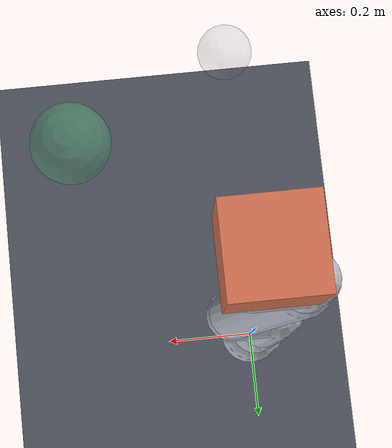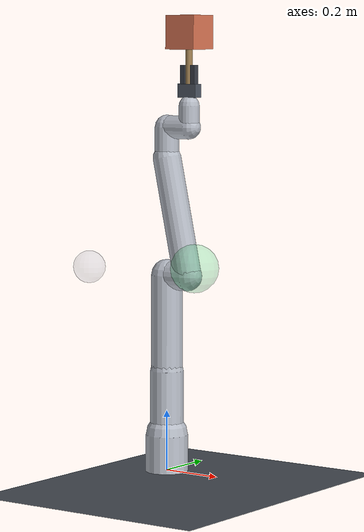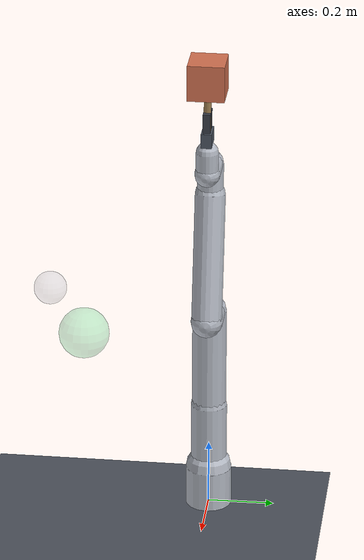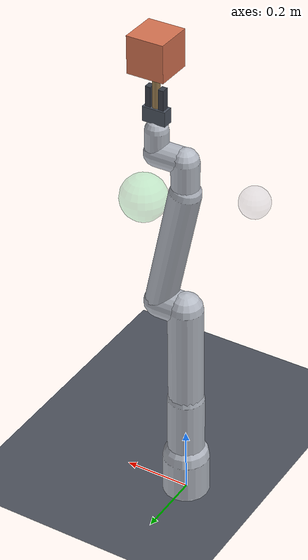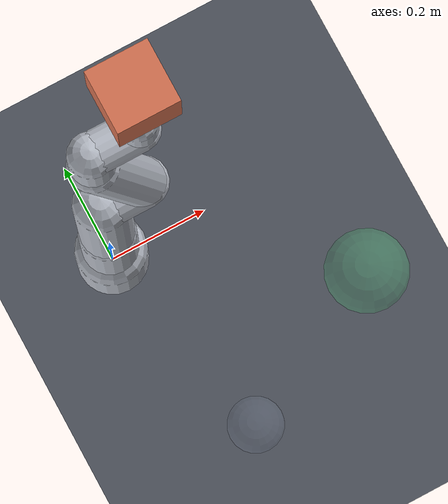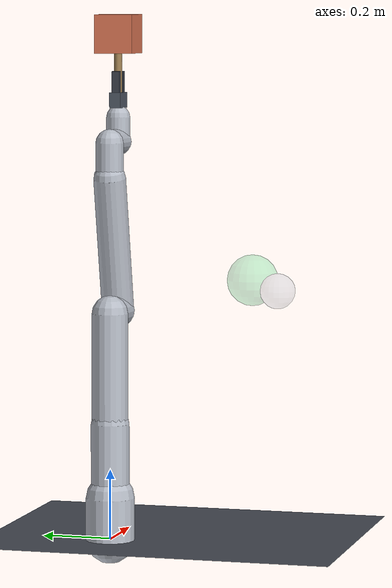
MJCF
<mujoco model="panda7_payload">
  <compiler angle="radian" autolimits="true"/>
  <option timestep="0.002" integrator="implicitfast" gravity="0 0 -9.81"/>

  <visual>
    <global offwidth="1280" offheight="800"/>
    <!-- The default headlight leaves this scene nearly black on a dark floor,
         which made a floating payload hard to notice at all. -->
    <headlight ambient="0.42 0.42 0.46" diffuse="0.55 0.55 0.55"
               specular="0.12 0.12 0.12"/>
    <map znear="0.02"/>
  </visual>

  <default>
    <joint damping="0.5" armature="0.1" frictionloss="0.2"/>
    <geom type="capsule" rgba="0.72 0.74 0.78 1" density="1200"
          contype="0" conaffinity="0"/>
    <default class="motor">
      <general ctrllimited="true" forcelimited="true"/>
    </default>
  </default>

  <worldbody>
    <light pos="0.6 -1.2 2.2" dir="-0.2 0.45 -1" diffuse="0.95 0.95 0.92"
           specular="0.2 0.2 0.2"/>
    <light pos="-1.2 0.8 1.8" dir="0.5 -0.35 -1" diffuse="0.35 0.38 0.45"/>
    <geom name="floor" type="plane" size="3 3 0.05" pos="0 0 0"
          rgba="0.30 0.32 0.36 1" contype="0" conaffinity="0"/>
    <!-- Where the payload is meant to end up.  A site rather than a body so it
         has no mass, no collision and no effect on the dynamics. -->
    <site name="goal" pos="0.346 -0.333 0.721" size="0.075" type="sphere"
          rgba="0.30 0.85 0.50 0.30"/>
    <!-- Where the payload starts, so the transport is legible in a still. -->
    <site name="start" pos="0.05 -0.477 0.721" size="0.05" type="sphere"
          rgba="0.55 0.60 0.70 0.18"/>
    <camera name="view" pos="0.20 -2.30 1.30" xyaxes="1 0 0 0 0.292 0.956"/>
    <body name="base" pos="0 0 0">
      <geom name="g_base" fromto="0 0 0 0 0 0.12" size="0.07"/>

      <body name="link1" pos="0 0 0.333">
        <joint name="j1" axis="0 0 1" range="-2.8973 2.8973"/>
        <geom name="g1" fromto="0 0 -0.19 0 0 0" size="0.055"/>

        <body name="link2" pos="0 0 0">
          <joint name="j2" axis="0 1 0" range="-1.7628 1.7628"/>
          <geom name="g2" fromto="0 0 0 0 0 0.316" size="0.052"/>

          <body name="link3" pos="0 0 0.316">
            <joint name="j3" axis="0 0 1" range="-2.8973 2.8973"/>
            <geom name="g3" fromto="0 0 0 0.0825 0 0" size="0.048"/>

            <body name="link4" pos="0.0825 0 0">
              <joint name="j4" axis="0 1 0" range="-3.0718 -0.0698"/>
              <geom name="g4" fromto="0 0 0 -0.0825 0 0.384" size="0.046"/>

              <body name="link5" pos="-0.0825 0 0.384">
                <joint name="j5" axis="0 0 1" range="-2.8973 2.8973"/>
                <geom name="g5" fromto="0 0 0 0 0 0.1" size="0.040"/>

                <body name="link6" pos="0 0 0.1">
                  <joint name="j6" axis="0 1 0" range="-0.0175 3.7525"/>
                  <geom name="g6" fromto="0 0 0 0.088 0 0" size="0.038"/>

                  <body name="link7" pos="0.088 0 0">
                    <joint name="j7" axis="0 0 1" range="-2.8973 2.8973"/>
                    <geom name="g7" fromto="0 0 0 0 0 0.07" size="0.034"/>

                    <!-- The grasp frame.  `z` points along the approach
                         direction, which is what separates the normal from the
                         tangential part of the grasp wrench. -->
                    <body name="grasp" pos="0 0 0.107">
                      <site name="grasp_site" pos="0 0 0" size="0.010"
                            rgba="0.94 0.71 0.16 1"/>

                      <geom name="g_hand" type="box" size="0.035 0.016 0.022"
                            pos="0 0 0.012" mass="0.55"
                            rgba="0.30 0.33 0.38 1"/>
                      <geom name="g_fingerA" type="box" size="0.008 0.011 0.032"
                            pos="0.020 0 0.062" mass="0.05"
                            rgba="0.22 0.24 0.28 1"/>
                      <geom name="g_fingerB" type="box" size="0.008 0.011 0.032"
                            pos="-0.020 0 0.062" mass="0.05"
                            rgba="0.22 0.24 0.28 1"/>
                      <geom name="g_handle" type="capsule"
                            fromto="0 0 0.030 0 0 0.155" size="0.011"
                            mass="0.10" rgba="0.62 0.50 0.32 1"/>

                      <geom name="g_payload" type="box" size="0.055 0.055 0.055"
                            pos="0 0 0.20" mass="0"
                            rgba="0.84 0.45 0.32 1"/>

                      <body name="payload" pos="0 0 0.20">
                        <!-- mass and body_pos are overwritten per hypothesis;
                             no geom, so nothing visible moves with the offset -->
                        <inertial pos="0 0 0" mass="1.0"
                                  diaginertia="0.004 0.004 0.004"/>
                      </body>
                    </body>
                  </body>
                </body>
              </body>
            </body>
          </body>
        </body>
      </body>
    </body>
  </worldbody>

  <actuator>
    <motor class="motor" joint="j1" name="a1" ctrlrange="-87 87"  forcerange="-87 87"/>
    <motor class="motor" joint="j2" name="a2" ctrlrange="-87 87"  forcerange="-87 87"/>
    <motor class="motor" joint="j3" name="a3" ctrlrange="-87 87"  forcerange="-87 87"/>
    <motor class="motor" joint="j4" name="a4" ctrlrange="-87 87"  forcerange="-87 87"/>
    <motor class="motor" joint="j5" name="a5" ctrlrange="-12 12"  forcerange="-12 12"/>
    <motor class="motor" joint="j6" name="a6" ctrlrange="-12 12"  forcerange="-12 12"/>
    <motor class="motor" joint="j7" name="a7" ctrlrange="-12 12"  forcerange="-12 12"/>
  </actuator>

  <keyframe>
    <!-- A reachable carrying pose: elbow down, payload roughly level. -->
    <key name="carry" qpos="0 -0.6 0 -2.0 0 1.6 0.8"/>
  </keyframe>
</mujoco>
